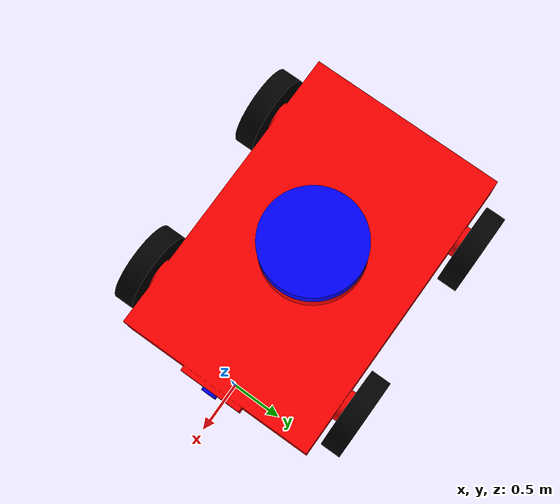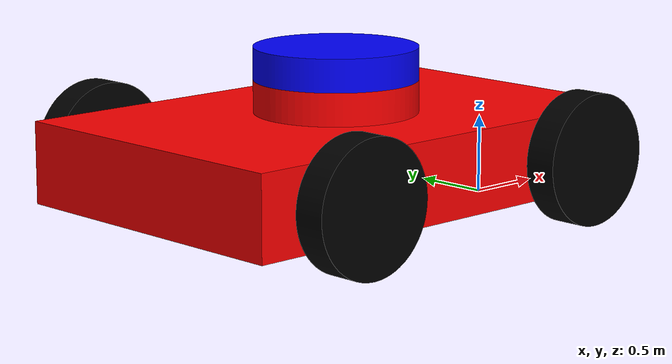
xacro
<?xml version='1.0' encoding='utf-8'?>
<robot xmlns:xacro="http://www.ros.org/wiki/xacro" name="robot_fourW">
    <link name="world"/>

    <link name="base_link">
        <inertial>
            <origin xyz="-1.353698598503849 -0.07231040440728938 0.4831170589118242" rpy="0.0 0.0 0.0" />
            <mass value="5" />
            <inertia ixx="8692.521269052417" iyy="18593.069135791302" izz="26006.184467637227" ixy="0.9622031836888207" iyz="0.06667300271711478" ixz="-6.4560191517398975" />
        </inertial>
        <visual name="base_link_visual">
            <origin xyz="0.0 0.0 0.0" rpy="0.0 0.0 0.0" />
            <geometry>
                <mesh filename="package://robots_description/models/robot_fourW/meshes/base_link.stl" scale="0.001 0.001 0.001" />
            </geometry>
            <material name="Red"> <color rgba="1.0 0.0 0.0 1.0"/></material>
        </visual>
        <collision name="base_link_collision">
            <origin xyz="0.0 0.0 0.0" rpy="0.0 0.0 0.0" />
            <geometry>
                <mesh filename="package://robots_description/models/robot_fourW/meshes/base_link.stl" scale="0.001 0.001 0.001" />
            </geometry>
        </collision>
    </link>
    <link name="brw">
        <inertial>
            <origin xyz="-3.8343381447702995e-09 -4.798902324409937e-09 0.10000000194436343" rpy="0.0 -0.0 0.0" />
            <mass value="1" />
            <inertia ixx="34.19728323184722" iyy="34.19728323189048" izz="63.13344596655185" ixy="-1.7337242752546445e-12" iyz="1.5276668818842154e-12" ixz="1.0942358130705543e-12" />
        </inertial>
        <visual name="brw_visual">
            <origin xyz="1.008396071793393 -0.4648275573294051 -1.3260599966876803" rpy="-1.5707963267948963 -4.91273688396632e-15 1.873501354054936e-16" />
            <geometry>
                <mesh filename="package://robots_description/models/robot_fourW/meshes/brw.stl" scale="0.001 0.001 0.001" />
            </geometry>
            <material name="Black"> <color rgba="0.0 0.0 0.0 1.0"/></material>
        </visual>
        <collision name="brw_collision">
            <origin xyz="1.008396071793393 -0.4648275573294051 -1.3260599966876803" rpy="-1.5707963267948963 -4.91273688396632e-15 1.873501354054936e-16" />
            <geometry>
                <mesh filename="package://robots_description/models/robot_fourW/meshes/brw.stl" scale="0.001 0.001 0.001" />
            </geometry>
        </collision>
    </link>
    <link name="lidar">
        <inertial>
            <origin xyz="1.2563089057948674e-09 3.1544848866360555e-09 0.0999999999079445" rpy="0.0 -0.0 0.0" />
            <mass value="0.5" />
            <inertia ixx="81.17744517179653" iyy="81.17744517185247" izz="154.1343895667851" ixy="-1.3642420526593924e-12" iyz="-2.0463630789890885e-12" ixz="-1.5916157281026244e-12" />
        </inertial>
        <visual name="lidar_visual">
            <origin xyz="1.3596570717933776 0.07228508414369614 -0.9155824778108631" rpy="-2.98372437868009e-16 -1.873501354054936e-16 -4.91273688396632e-15" />
            <geometry>
                <mesh filename="package://robots_description/models/robot_fourW/meshes/lidar.stl" scale="0.001 0.001 0.001" />
            </geometry>
            <material name="Blue"> <color rgba="0.0 0.0 1.0 1.0"/></material>
        </visual>
        <collision name="lidar_collision">
            <origin xyz="1.3596570717933776 0.07228508414369614 -0.9155824778108631" rpy="-2.98372437868009e-16 -1.873501354054936e-16 -4.91273688396632e-15" />
            <geometry>
                <mesh filename="package://robots_description/models/robot_fourW/meshes/lidar.stl" scale="0.001 0.001 0.001" />
            </geometry>
        </collision>
    </link>
    <link name="flw">
        <inertial>
            <origin xyz="-3.834348945019883e-09 4.798900405944551e-09 0.09999999805563903" rpy="0.0 -0.0 0.0" />
            <mass value="1" />
            <inertia ixx="34.1972832318379" iyy="34.19728323189156" izz="63.13344596654861" ixy="1.9326762412674725e-12" iyz="1.9326762412674725e-12" ixz="-9.094947017729282e-13" />
        </inertial>
        <visual name="flw_visual">
            <origin xyz="0.912643425060391 0.6190515632385829 -1.4873192080396729" rpy="1.5707963267948968 4.91273688396632e-15 -1.873501354054936e-16" />
            <geometry>
                <mesh filename="package://robots_description/models/robot_fourW/meshes/flw.stl" scale="0.001 0.001 0.001" />
            </geometry>
            <material name="Black"> <color rgba="0.0 0.0 0.0 1.0"/></material>
        </visual>
        <collision name="flw_collision">
            <origin xyz="0.912643425060391 0.6190515632385829 -1.4873192080396729" rpy="1.5707963267948968 4.91273688396632e-15 -1.873501354054936e-16" />
            <geometry>
                <mesh filename="package://robots_description/models/robot_fourW/meshes/flw.stl" scale="0.001 0.001 0.001" />
            </geometry>
        </collision>
    </link>
    <link name="frw">
        <inertial>
            <origin xyz="-3.834305744021549e-09 -4.7989019691385695e-09 0.10000000194436882" rpy="0.0 -0.0 0.0" />
            <mass value="1" />
            <inertia ixx="34.19728323141587" iyy="34.197283231904294" izz="63.1334459665386" ixy="-1.7621459846850485e-11" iyz="1.6434853478131117e-11" ixz="1.617195266589988e-11" />
        </inertial>
        <visual name="frw_visual">
            <origin xyz="-0.6873565749395758 -0.6190515632385847 -5.712680791960349" rpy="-1.5707963267948963 -4.91273688396632e-15 1.873501354054936e-16" />
            <geometry>
                <mesh filename="package://robots_description/models/robot_fourW/meshes/frw.stl" scale="0.001 0.001 0.001" />
            </geometry>
            <material name="Black"> <color rgba="0.0 0.0 0.0 1.0"/></material>
        </visual>
        <collision name="frw_collision">
            <origin xyz="-0.6873565749395758 -0.6190515632385847 -5.712680791960349" rpy="-1.5707963267948963 -4.91273688396632e-15 1.873501354054936e-16" />
            <geometry>
                <mesh filename="package://robots_description/models/robot_fourW/meshes/frw.stl" scale="0.001 0.001 0.001" />
            </geometry>
        </collision>
    </link>
    <link name="blw">
        <inertial>
            <origin xyz="-3.834327344520716e-09 4.7989005480530975e-09 0.09999999805565722" rpy="0.0 -0.0 0.0" />
            <mass value="1" />
            <inertia ixx="34.19728323186973" iyy="34.19728323196341" izz="63.133445966618694" ixy="3.780087354243733e-12" iyz="2.9558577807620168e-12" ixz="-3.183231456205249e-12" />
        </inertial>
        <visual name="blw_visual">
            <origin xyz="2.5626434250603904 0.6190515632385832 -0.03731920803967313" rpy="1.5707963267948968 4.91273688396632e-15 -1.873501354054936e-16" />
            <geometry>
                <mesh filename="package://robots_description/models/robot_fourW/meshes/blw.stl" scale="0.001 0.001 0.001" />
            </geometry>
            <material name="Black"> <color rgba="0.0 0.0 0.0 1.0"/></material>
        </visual>
        <collision name="blw_collision">
            <origin xyz="2.5626434250603904 0.6190515632385832 -0.03731920803967313" rpy="1.5707963267948968 4.91273688396632e-15 -1.873501354054936e-16" />
            <geometry>
                <mesh filename="package://robots_description/models/robot_fourW/meshes/blw.stl" scale="0.001 0.001 0.001" />
            </geometry>
        </collision>
    </link>
    <link name="camera">
        <inertial>
            <origin xyz="1.6458219675996589e-09 -5.667908453688142e-10 0.015000001843940253" rpy="0.0 -0.0 0.0" />
            <mass value="0.2" />
            <inertia ixx="0.007183942979018809" iyy="0.007183942979011704" izz="0.013692703347185642" ixy="-3.5419573509136786e-34" iyz="3.552713678800501e-15" ixz="-2.6645352591003757e-15" />
        </inertial>
        <visual name="camera_visual">
            <origin xyz="-0.5861970373707414 -0.08539349414369667 -0.1822674953354516" rpy="-3.141592653589793 -1.5707963267948917 0" />
            <geometry>
                <mesh filename="package://robots_description/models/robot_fourW/meshes/camera.stl" scale="0.001 0.001 0.001" />
            </geometry>
            <material name="Blue"> <color rgba="0.0 0.0 1.0 1.0"/></material>
        </visual>
        <collision name="camera_collision">
            <origin xyz="-0.5861970373707414 -0.08539349414369667 -0.1822674953354516" rpy="-3.141592653589793 -1.5707963267948917 0" />
            <geometry>
                <mesh filename="package://robots_description/models/robot_fourW/meshes/camera.stl" scale="0.001 0.001 0.001" />
            </geometry>
        </collision>
    </link>

    <!--=======================================Joints===================================-->
    <joint name="virtual_joint" type="fixed">
        <parent link="world"/>
        <child link="base_link"/>
        <origin xyz="0 0 0" rpy="0 0 0"/>
    </joint>

    <joint name="base_link_joint_frw" type="continuous">
        <origin xyz="-0.4083960717933755 -1.1222850641436977 0.4653274178108625" rpy="1.570796326794897 1.8735013540549048e-16 4.912736883966281e-15" />
        <parent link="base_link" />
        <child link="frw" />
        <axis xyz="0 0 -1" />
    </joint>
    <joint name="base_link_joint_brw" type="continuous">
        <origin xyz="-2.2583960717933897 -1.1222850641437068 0.4653274178108629" rpy="1.570796326794897 1.8735013540549048e-16 4.912736883966281e-15" />
        <parent link="base_link" />
        <child link="brw" />
        <axis xyz="0 0 -1" />
        <mimic joint="base_link_joint_frw" multiplier="1.0" offset="0.0"/>
    </joint>
    <joint name="base_link_joint_flw" type="continuous">
        <origin xyz="-0.4083960717933846 0.9777149358563016 0.4653274178108632" rpy="-1.5707963267948963 1.8735013540549048e-16 4.912736883966281e-15" />
        <parent link="base_link" />
        <child link="flw" />
        <axis xyz="0 0 1" />
    </joint>
    <joint name="base_link_joint_blw" type="continuous">
        <origin xyz="-2.2583960717933986 0.9777149358562927 0.4653274178108635" rpy="-1.5707963267948963 1.8735013540549048e-16 4.912736883966281e-15" />
        <parent link="base_link" />
        <child link="blw" />
        <axis xyz="0 0 1" />
        <mimic joint="base_link_joint_flw" multiplier="1.0" offset="0.0"/>
    </joint>
    <joint name="base_link_joint_lidar" type="continuous">
        <origin xyz="-1.359657071793387 -0.07228508414370254 0.9155824778108627" rpy="2.9837243786801003e-16 1.8735013540549048e-16 4.912736883966281e-15" />
        <parent link="base_link" />
        <child link="lidar" />
        <axis xyz="0.0 4.930380657631324e-32 1.0" />
    </joint>
    <joint name="base_link_joint_cam" type="fixed">
        <origin xyz="0.19339463820662559 -0.08539349414369497 0.5885762978108627" rpy="-3.1415926535897882 -1.5707963267948957 0" />
        <parent link="base_link" />
        <child link="camera" />
    </joint>

</robot>
